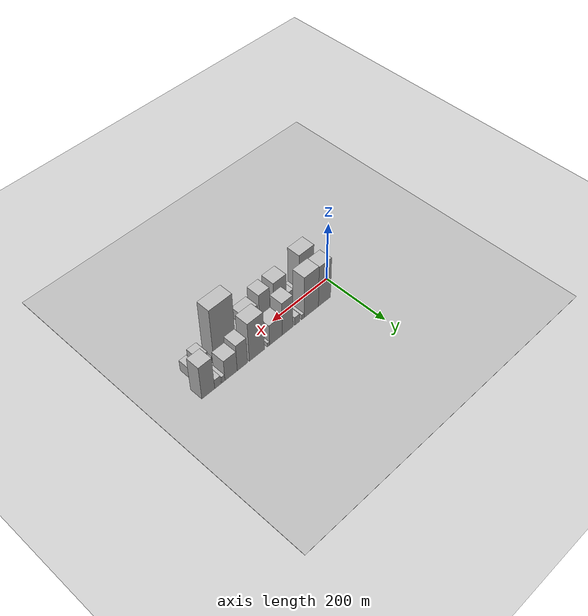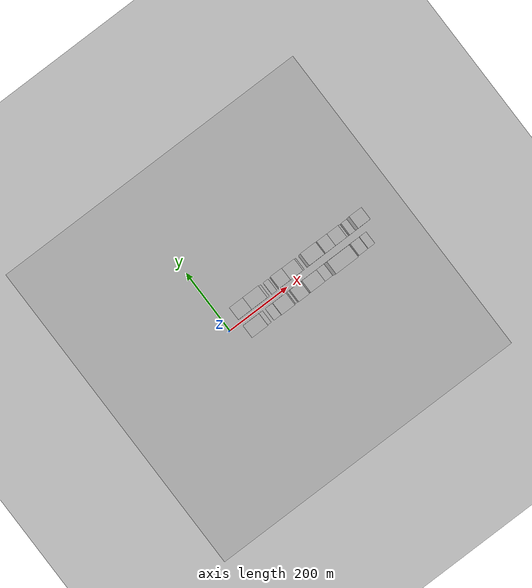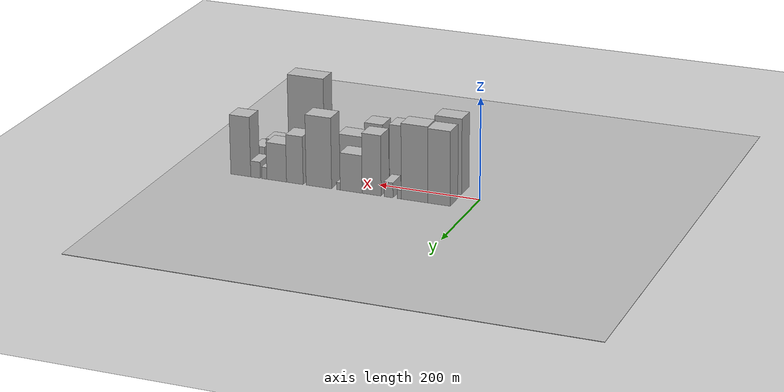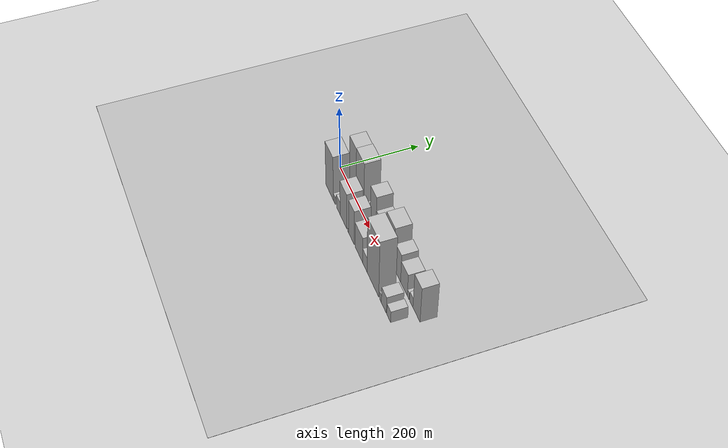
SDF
<?xml version="1.0" encoding="utf-8"?>

<sdf version="1.6">

   <world name="default">

      <gui fullscreen="0">

         <camera name="user_camera">

            <pose>-15 0 4.57585 0 0 0</pose>

            <view_controller>orbit</view_controller>

         </camera>

      </gui>

      <scene>

         <sky>

           <clouds>

             <speed>12</speed>

           </clouds>

         </sky>

         <ambient>0.4 0.4 0.4 1</ambient>

         <background>0.7 0.7 0.7 1</background>

         <shadows>1</shadows>

      </scene>

      <gravity>0 0 -9.8066</gravity>

      <magnetic_field>6e-06 2.3e-05 -4.2e-05</magnetic_field>

      <physics default="0" name="default_physics" type="ode">

         <ode>

            <solver>

               <type>quick</type>

               <iters>10</iters>

               <sor>1.0</sor>

               <use_dynamic_moi_rescaling>0</use_dynamic_moi_rescaling>

            </solver>

            <constraints>

               <cfm>0</cfm>

               <erp>0.2</erp>

               <contact_max_correcting_vel>100</contact_max_correcting_vel>

               <contact_surface_layer>0.001</contact_surface_layer>

            </constraints>

         </ode>

         <max_step_size>0.004</max_step_size>

         <real_time_factor>1</real_time_factor>

         <real_time_update_rate>250</real_time_update_rate>

      </physics>

      <light name="sun" type="directional">

         <cast_shadows>1</cast_shadows>

         <pose>0 0 10 0 0 0</pose>

         <diffuse>0.8 0.8 0.8 1</diffuse>

         <specular>0.2 0.2 0.2 1</specular>

         <attenuation>

            <range>1000</range>

            <constant>0.9</constant>

            <linear>0.01</linear>

            <quadratic>0.001</quadratic>

         </attenuation>

         <direction>-0.5 0.1 -0.9</direction>

      </light>

      <include>

         <name>ground_plane_1</name>

         <uri>model://HANNAS_ground_plane</uri>

         <pose>0 0 0  0 0 0</pose>

      </include>

      <include>

         <name>ground_plane_2</name>

         <uri>model://HANNAS_ground_plane</uri>

         <pose>100 0 0  0 0 0</pose>

      </include>

      <model name="building_1">

         <static>1</static>

         <pose frame="">62.2849 30.0000 0 0.000000 0.000000 1.570796</pose>

         <link name="link">

            <pose frame="">0 0 73.50 0 0 0</pose>

            <collision name="collision">

               <geometry>

                  <box>

                     <size>40.0000 44.5698 147.0000</size>

                  </box>

               </geometry>

               <max_contacts>10</max_contacts>

               <surface>

                  <contact>

                     <ode/>

                  </contact>

                  <bounce/>

                  <friction>

                     <torsional>

                        <ode/>

                     </torsional>

                     <ode/>

                  </friction>

               </surface>

            </collision>

            <visual name="visual">

               <cast_shadows>0</cast_shadows>

               <geometry>

                  <box>

                     <size>40.0000 44.5698 147.0000</size>

                  </box>

               </geometry>

               <material>

                  <script>

                     <uri>model://HANNAS_wall/materials/scripts</uri>

                     <uri>model://HANNAS_wall/materials/textures</uri>

                     <name>vrc/HANNAS_wall</name>

                  </script>

               </material>

            </visual>

            <self_collide>0</self_collide>

            <enable_wind>0</enable_wind>

            <kinematic>0</kinematic>

         </link>

      </model>

      <model name="building_2">

         <static>1</static>

         <pose frame="">110.5706 30.0000 0 0.000000 0.000000 1.570796</pose>

         <link name="link">

            <pose frame="">0 0 75.00 0 0 0</pose>

            <collision name="collision">

               <geometry>

                  <box>

                     <size>40.0000 52.0017 150.0000</size>

                  </box>

               </geometry>

               <max_contacts>10</max_contacts>

               <surface>

                  <contact>

                     <ode/>

                  </contact>

                  <bounce/>

                  <friction>

                     <torsional>

                        <ode/>

                     </torsional>

                     <ode/>

                  </friction>

               </surface>

            </collision>

            <visual name="visual">

               <cast_shadows>0</cast_shadows>

               <geometry>

                  <box>

                     <size>40.0000 52.0017 150.0000</size>

                  </box>

               </geometry>

               <material>

                  <script>

                     <uri>model://HANNAS_wall/materials/scripts</uri>

                     <uri>model://HANNAS_wall/materials/textures</uri>

                     <name>vrc/HANNAS_wall</name>

                  </script>

               </material>

            </visual>

            <self_collide>0</self_collide>

            <enable_wind>0</enable_wind>

            <kinematic>0</kinematic>

         </link>

      </model>

      <model name="building_3">

         <static>1</static>

         <pose frame="">140.7475 30.0000 0 0.000000 0.000000 1.570796</pose>

         <link name="link">

            <pose frame="">0 0 9.00 0 0 0</pose>

            <collision name="collision">

               <geometry>

                  <box>

                     <size>40.0000 8.3522 18.0000</size>

                  </box>

               </geometry>

               <max_contacts>10</max_contacts>

               <surface>

                  <contact>

                     <ode/>

                  </contact>

                  <bounce/>

                  <friction>

                     <torsional>

                        <ode/>

                     </torsional>

                     <ode/>

                  </friction>

               </surface>

            </collision>

            <visual name="visual">

               <cast_shadows>0</cast_shadows>

               <geometry>

                  <box>

                     <size>40.0000 8.3522 18.0000</size>

                  </box>

               </geometry>

               <material>

                  <script>

                     <uri>model://HANNAS_wall/materials/scripts</uri>

                     <uri>model://HANNAS_wall/materials/textures</uri>

                     <name>vrc/HANNAS_wall</name>

                  </script>

               </material>

            </visual>

            <self_collide>0</self_collide>

            <enable_wind>0</enable_wind>

            <kinematic>0</kinematic>

         </link>

      </model>

      <model name="building_4">

         <static>1</static>

         <pose frame="">161.8070 30.0000 0 0.000000 0.000000 1.570796</pose>

         <link name="link">

            <pose frame="">0 0 15.00 0 0 0</pose>

            <collision name="collision">

               <geometry>

                  <box>

                     <size>40.0000 17.7667 30.0000</size>

                  </box>

               </geometry>

               <max_contacts>10</max_contacts>

               <surface>

                  <contact>

                     <ode/>

                  </contact>

                  <bounce/>

                  <friction>

                     <torsional>

                        <ode/>

                     </torsional>

                     <ode/>

                  </friction>

               </surface>

            </collision>

            <visual name="visual">

               <cast_shadows>0</cast_shadows>

               <geometry>

                  <box>

                     <size>40.0000 17.7667 30.0000</size>

                  </box>

               </geometry>

               <material>

                  <script>

                     <uri>model://HANNAS_wall/materials/scripts</uri>

                     <uri>model://HANNAS_wall/materials/textures</uri>

                     <name>vrc/HANNAS_wall</name>

                  </script>

               </material>

            </visual>

            <self_collide>0</self_collide>

            <enable_wind>0</enable_wind>

            <kinematic>0</kinematic>

         </link>

      </model>

      <model name="building_5">

         <static>1</static>

         <pose frame="">195.6991 30.0000 0 0.000000 0.000000 1.570796</pose>

         <link name="link">

            <pose frame="">0 0 60.00 0 0 0</pose>

            <collision name="collision">

               <geometry>

                  <box>

                     <size>40.0000 38.0176 120.0000</size>

                  </box>

               </geometry>

               <max_contacts>10</max_contacts>

               <surface>

                  <contact>

                     <ode/>

                  </contact>

                  <bounce/>

                  <friction>

                     <torsional>

                        <ode/>

                     </torsional>

                     <ode/>

                  </friction>

               </surface>

            </collision>

            <visual name="visual">

               <cast_shadows>0</cast_shadows>

               <geometry>

                  <box>

                     <size>40.0000 38.0176 120.0000</size>

                  </box>

               </geometry>

               <material>

                  <script>

                     <uri>model://HANNAS_wall/materials/scripts</uri>

                     <uri>model://HANNAS_wall/materials/textures</uri>

                     <name>vrc/HANNAS_wall</name>

                  </script>

               </material>

            </visual>

            <self_collide>0</self_collide>

            <enable_wind>0</enable_wind>

            <kinematic>0</kinematic>

         </link>

      </model>

      <model name="building_6">

         <static>1</static>

         <pose frame="">236.7764 30.0000 0 0.000000 0.000000 1.570796</pose>

         <link name="link">

            <pose frame="">0 0 37.50 0 0 0</pose>

            <collision name="collision">

               <geometry>

                  <box>

                     <size>40.0000 44.1371 75.0000</size>

                  </box>

               </geometry>

               <max_contacts>10</max_contacts>

               <surface>

                  <contact>

                     <ode/>

                  </contact>

                  <bounce/>

                  <friction>

                     <torsional>

                        <ode/>

                     </torsional>

                     <ode/>

                  </friction>

               </surface>

            </collision>

            <visual name="visual">

               <cast_shadows>0</cast_shadows>

               <geometry>

                  <box>

                     <size>40.0000 44.1371 75.0000</size>

                  </box>

               </geometry>

               <material>

                  <script>

                     <uri>model://HANNAS_wall/materials/scripts</uri>

                     <uri>model://HANNAS_wall/materials/textures</uri>

                     <name>vrc/HANNAS_wall</name>

                  </script>

               </material>

            </visual>

            <self_collide>0</self_collide>

            <enable_wind>0</enable_wind>

            <kinematic>0</kinematic>

         </link>

      </model>

      <model name="building_7">

         <static>1</static>

         <pose frame="">262.4661 30.0000 0 0.000000 0.000000 1.570796</pose>

         <link name="link">

            <pose frame="">0 0 7.50 0 0 0</pose>

            <collision name="collision">

               <geometry>

                  <box>

                     <size>40.0000 7.2424 15.0000</size>

                  </box>

               </geometry>

               <max_contacts>10</max_contacts>

               <surface>

                  <contact>

                     <ode/>

                  </contact>

                  <bounce/>

                  <friction>

                     <torsional>

                        <ode/>

                     </torsional>

                     <ode/>

                  </friction>

               </surface>

            </collision>

            <visual name="visual">

               <cast_shadows>0</cast_shadows>

               <geometry>

                  <box>

                     <size>40.0000 7.2424 15.0000</size>

                  </box>

               </geometry>

               <material>

                  <script>

                     <uri>model://HANNAS_wall/materials/scripts</uri>

                     <uri>model://HANNAS_wall/materials/textures</uri>

                     <name>vrc/HANNAS_wall</name>

                  </script>

               </material>

            </visual>

            <self_collide>0</self_collide>

            <enable_wind>0</enable_wind>

            <kinematic>0</kinematic>

         </link>

      </model>

      <model name="building_8">

         <static>1</static>

         <pose frame="">301.9449 30.0000 0 0.000000 0.000000 1.570796</pose>

         <link name="link">

            <pose frame="">0 0 70.50 0 0 0</pose>

            <collision name="collision">

               <geometry>

                  <box>

                     <size>40.0000 51.7151 141.0000</size>

                  </box>

               </geometry>

               <max_contacts>10</max_contacts>

               <surface>

                  <contact>

                     <ode/>

                  </contact>

                  <bounce/>

                  <friction>

                     <torsional>

                        <ode/>

                     </torsional>

                     <ode/>

                  </friction>

               </surface>

            </collision>

            <visual name="visual">

               <cast_shadows>0</cast_shadows>

               <geometry>

                  <box>

                     <size>40.0000 51.7151 141.0000</size>

                  </box>

               </geometry>

               <material>

                  <script>

                     <uri>model://HANNAS_wall/materials/scripts</uri>

                     <uri>model://HANNAS_wall/materials/textures</uri>

                     <name>vrc/HANNAS_wall</name>

                  </script>

               </material>

            </visual>

            <self_collide>0</self_collide>

            <enable_wind>0</enable_wind>

            <kinematic>0</kinematic>

         </link>

      </model>

      <model name="building_9">

         <static>1</static>

         <pose frame="">350.8130 30.0000 0 0.000000 0.000000 1.570796</pose>

         <link name="link">

            <pose frame="">0 0 48.00 0 0 0</pose>

            <collision name="collision">

               <geometry>

                  <box>

                     <size>40.0000 34.0211 96.0000</size>

                  </box>

               </geometry>

               <max_contacts>10</max_contacts>

               <surface>

                  <contact>

                     <ode/>

                  </contact>

                  <bounce/>

                  <friction>

                     <torsional>

                        <ode/>

                     </torsional>

                     <ode/>

                  </friction>

               </surface>

            </collision>

            <visual name="visual">

               <cast_shadows>0</cast_shadows>

               <geometry>

                  <box>

                     <size>40.0000 34.0211 96.0000</size>

                  </box>

               </geometry>

               <material>

                  <script>

                     <uri>model://HANNAS_wall/materials/scripts</uri>

                     <uri>model://HANNAS_wall/materials/textures</uri>

                     <name>vrc/HANNAS_wall</name>

                  </script>

               </material>

            </visual>

            <self_collide>0</self_collide>

            <enable_wind>0</enable_wind>

            <kinematic>0</kinematic>

         </link>

      </model>

      <model name="building_10">

         <static>1</static>

         <pose frame="">388.0359 30.0000 0 0.000000 0.000000 1.570796</pose>

         <link name="link">

            <pose frame="">0 0 37.50 0 0 0</pose>

            <collision name="collision">

               <geometry>

                  <box>

                     <size>40.0000 40.4247 75.0000</size>

                  </box>

               </geometry>

               <max_contacts>10</max_contacts>

               <surface>

                  <contact>

                     <ode/>

                  </contact>

                  <bounce/>

                  <friction>

                     <torsional>

                        <ode/>

                     </torsional>

                     <ode/>

                  </friction>

               </surface>

            </collision>

            <visual name="visual">

               <cast_shadows>0</cast_shadows>

               <geometry>

                  <box>

                     <size>40.0000 40.4247 75.0000</size>

                  </box>

               </geometry>

               <material>

                  <script>

                     <uri>model://HANNAS_wall/materials/scripts</uri>

                     <uri>model://HANNAS_wall/materials/textures</uri>

                     <name>vrc/HANNAS_wall</name>

                  </script>

               </material>

            </visual>

            <self_collide>0</self_collide>

            <enable_wind>0</enable_wind>

            <kinematic>0</kinematic>

         </link>

      </model>

      <model name="building_11">

         <static>1</static>

         <pose frame="">413.4370 30.0000 0 0.000000 0.000000 1.570796</pose>

         <link name="link">

            <pose frame="">0 0 12.00 0 0 0</pose>

            <collision name="collision">

               <geometry>

                  <box>

                     <size>40.0000 10.3775 24.0000</size>

                  </box>

               </geometry>

               <max_contacts>10</max_contacts>

               <surface>

                  <contact>

                     <ode/>

                  </contact>

                  <bounce/>

                  <friction>

                     <torsional>

                        <ode/>

                     </torsional>

                     <ode/>

                  </friction>

               </surface>

            </collision>

            <visual name="visual">

               <cast_shadows>0</cast_shadows>

               <geometry>

                  <box>

                     <size>40.0000 10.3775 24.0000</size>

                  </box>

               </geometry>

               <material>

                  <script>

                     <uri>model://HANNAS_wall/materials/scripts</uri>

                     <uri>model://HANNAS_wall/materials/textures</uri>

                     <name>vrc/HANNAS_wall</name>

                  </script>

               </material>

            </visual>

            <self_collide>0</self_collide>

            <enable_wind>0</enable_wind>

            <kinematic>0</kinematic>

         </link>

      </model>

      <model name="building_12">

         <static>1</static>

         <pose frame="">431.5177 30.0000 0 0.000000 0.000000 1.570796</pose>

         <link name="link">

            <pose frame="">0 0 16.50 0 0 0</pose>

            <collision name="collision">

               <geometry>

                  <box>

                     <size>40.0000 19.7840 33.0000</size>

                  </box>

               </geometry>

               <max_contacts>10</max_contacts>

               <surface>

                  <contact>

                     <ode/>

                  </contact>

                  <bounce/>

                  <friction>

                     <torsional>

                        <ode/>

                     </torsional>

                     <ode/>

                  </friction>

               </surface>

            </collision>

            <visual name="visual">

               <cast_shadows>0</cast_shadows>

               <geometry>

                  <box>

                     <size>40.0000 19.7840 33.0000</size>

                  </box>

               </geometry>

               <material>

                  <script>

                     <uri>model://HANNAS_wall/materials/scripts</uri>

                     <uri>model://HANNAS_wall/materials/textures</uri>

                     <name>vrc/HANNAS_wall</name>

                  </script>

               </material>

            </visual>

            <self_collide>0</self_collide>

            <enable_wind>0</enable_wind>

            <kinematic>0</kinematic>

         </link>

      </model>

      <model name="building_13">

         <static>1</static>

         <pose frame="">462.0209 30.0000 0 0.000000 0.000000 1.570796</pose>

         <link name="link">

            <pose frame="">0 0 60.00 0 0 0</pose>

            <collision name="collision">

               <geometry>

                  <box>

                     <size>40.0000 41.2224 120.0000</size>

                  </box>

               </geometry>

               <max_contacts>10</max_contacts>

               <surface>

                  <contact>

                     <ode/>

                  </contact>

                  <bounce/>

                  <friction>

                     <torsional>

                        <ode/>

                     </torsional>

                     <ode/>

                  </friction>

               </surface>

            </collision>

            <visual name="visual">

               <cast_shadows>0</cast_shadows>

               <geometry>

                  <box>

                     <size>40.0000 41.2224 120.0000</size>

                  </box>

               </geometry>

               <material>

                  <script>

                     <uri>model://HANNAS_wall/materials/scripts</uri>

                     <uri>model://HANNAS_wall/materials/textures</uri>

                     <name>vrc/HANNAS_wall</name>

                  </script>

               </material>

            </visual>

            <self_collide>0</self_collide>

            <enable_wind>0</enable_wind>

            <kinematic>0</kinematic>

         </link>

      </model>

      <model name="building_14">

         <static>1</static>

         <pose frame="">66.6014 -30.0000 0 0.000000 0.000000 1.570796</pose>

         <link name="link">

            <pose frame="">0 0 75.00 0 0 0</pose>

            <collision name="collision">

               <geometry>

                  <box>

                     <size>40.0000 53.2028 150.0000</size>

                  </box>

               </geometry>

               <max_contacts>10</max_contacts>

               <surface>

                  <contact>

                     <ode/>

                  </contact>

                  <bounce/>

                  <friction>

                     <torsional>

                        <ode/>

                     </torsional>

                     <ode/>

                  </friction>

               </surface>

            </collision>

            <visual name="visual">

               <cast_shadows>0</cast_shadows>

               <geometry>

                  <box>

                     <size>40.0000 53.2028 150.0000</size>

                  </box>

               </geometry>

               <material>

                  <script>

                     <uri>model://HANNAS_wall/materials/scripts</uri>

                     <uri>model://HANNAS_wall/materials/textures</uri>

                     <name>vrc/HANNAS_wall</name>

                  </script>

               </material>

            </visual>

            <self_collide>0</self_collide>

            <enable_wind>0</enable_wind>

            <kinematic>0</kinematic>

         </link>

      </model>

      <model name="building_15">

         <static>1</static>

         <pose frame="">99.3333 -30.0000 0 0.000000 0.000000 1.570796</pose>

         <link name="link">

            <pose frame="">0 0 13.50 0 0 0</pose>

            <collision name="collision">

               <geometry>

                  <box>

                     <size>40.0000 12.2610 27.0000</size>

                  </box>

               </geometry>

               <max_contacts>10</max_contacts>

               <surface>

                  <contact>

                     <ode/>

                  </contact>

                  <bounce/>

                  <friction>

                     <torsional>

                        <ode/>

                     </torsional>

                     <ode/>

                  </friction>

               </surface>

            </collision>

            <visual name="visual">

               <cast_shadows>0</cast_shadows>

               <geometry>

                  <box>

                     <size>40.0000 12.2610 27.0000</size>

                  </box>

               </geometry>

               <material>

                  <script>

                     <uri>model://HANNAS_wall/materials/scripts</uri>

                     <uri>model://HANNAS_wall/materials/textures</uri>

                     <name>vrc/HANNAS_wall</name>

                  </script>

               </material>

            </visual>

            <self_collide>0</self_collide>

            <enable_wind>0</enable_wind>

            <kinematic>0</kinematic>

         </link>

      </model>

      <model name="building_16">

         <static>1</static>

         <pose frame="">126.8223 -30.0000 0 0.000000 0.000000 1.570796</pose>

         <link name="link">

            <pose frame="">0 0 22.50 0 0 0</pose>

            <collision name="collision">

               <geometry>

                  <box>

                     <size>40.0000 24.7169 45.0000</size>

                  </box>

               </geometry>

               <max_contacts>10</max_contacts>

               <surface>

                  <contact>

                     <ode/>

                  </contact>

                  <bounce/>

                  <friction>

                     <torsional>

                        <ode/>

                     </torsional>

                     <ode/>

                  </friction>

               </surface>

            </collision>

            <visual name="visual">

               <cast_shadows>0</cast_shadows>

               <geometry>

                  <box>

                     <size>40.0000 24.7169 45.0000</size>

                  </box>

               </geometry>

               <material>

                  <script>

                     <uri>model://HANNAS_wall/materials/scripts</uri>

                     <uri>model://HANNAS_wall/materials/textures</uri>

                     <name>vrc/HANNAS_wall</name>

                  </script>

               </material>

            </visual>

            <self_collide>0</self_collide>

            <enable_wind>0</enable_wind>

            <kinematic>0</kinematic>

         </link>

      </model>

      <model name="building_17">

         <static>1</static>

         <pose frame="">161.5404 -30.0000 0 0.000000 0.000000 1.570796</pose>

         <link name="link">

            <pose frame="">0 0 60.00 0 0 0</pose>

            <collision name="collision">

               <geometry>

                  <box>

                     <size>40.0000 44.7193 120.0000</size>

                  </box>

               </geometry>

               <max_contacts>10</max_contacts>

               <surface>

                  <contact>

                     <ode/>

                  </contact>

                  <bounce/>

                  <friction>

                     <torsional>

                        <ode/>

                     </torsional>

                     <ode/>

                  </friction>

               </surface>

            </collision>

            <visual name="visual">

               <cast_shadows>0</cast_shadows>

               <geometry>

                  <box>

                     <size>40.0000 44.7193 120.0000</size>

                  </box>

               </geometry>

               <material>

                  <script>

                     <uri>model://HANNAS_wall/materials/scripts</uri>

                     <uri>model://HANNAS_wall/materials/textures</uri>

                     <name>vrc/HANNAS_wall</name>

                  </script>

               </material>

            </visual>

            <self_collide>0</self_collide>

            <enable_wind>0</enable_wind>

            <kinematic>0</kinematic>

         </link>

      </model>

      <model name="building_18">

         <static>1</static>

         <pose frame="">193.3430 -30.0000 0 0.000000 0.000000 1.570796</pose>

         <link name="link">

            <pose frame="">0 0 7.50 0 0 0</pose>

            <collision name="collision">

               <geometry>

                  <box>

                     <size>40.0000 6.8859 15.0000</size>

                  </box>

               </geometry>

               <max_contacts>10</max_contacts>

               <surface>

                  <contact>

                     <ode/>

                  </contact>

                  <bounce/>

                  <friction>

                     <torsional>

                        <ode/>

                     </torsional>

                     <ode/>

                  </friction>

               </surface>

            </collision>

            <visual name="visual">

               <cast_shadows>0</cast_shadows>

               <geometry>

                  <box>

                     <size>40.0000 6.8859 15.0000</size>

                  </box>

               </geometry>

               <material>

                  <script>

                     <uri>model://HANNAS_wall/materials/scripts</uri>

                     <uri>model://HANNAS_wall/materials/textures</uri>

                     <name>vrc/HANNAS_wall</name>

                  </script>

               </material>

            </visual>

            <self_collide>0</self_collide>

            <enable_wind>0</enable_wind>

            <kinematic>0</kinematic>

         </link>

      </model>

      <model name="building_19">

         <static>1</static>

         <pose frame="">215.1888 -30.0000 0 0.000000 0.000000 1.570796</pose>

         <link name="link">

            <pose frame="">0 0 58.50 0 0 0</pose>

            <collision name="collision">

               <geometry>

                  <box>

                     <size>40.0000 36.8058 117.0000</size>

                  </box>

               </geometry>

               <max_contacts>10</max_contacts>

               <surface>

                  <contact>

                     <ode/>

                  </contact>

                  <bounce/>

                  <friction>

                     <torsional>

                        <ode/>

                     </torsional>

                     <ode/>

                  </friction>

               </surface>

            </collision>

            <visual name="visual">

               <cast_shadows>0</cast_shadows>

               <geometry>

                  <box>

                     <size>40.0000 36.8058 117.0000</size>

                  </box>

               </geometry>

               <material>

                  <script>

                     <uri>model://HANNAS_wall/materials/scripts</uri>

                     <uri>model://HANNAS_wall/materials/textures</uri>

                     <name>vrc/HANNAS_wall</name>

                  </script>

               </material>

            </visual>

            <self_collide>0</self_collide>

            <enable_wind>0</enable_wind>

            <kinematic>0</kinematic>

         </link>

      </model>

      <model name="building_20">

         <static>1</static>

         <pose frame="">263.2502 -30.0000 0 0.000000 0.000000 1.570796</pose>

         <link name="link">

            <pose frame="">0 0 43.50 0 0 0</pose>

            <collision name="collision">

               <geometry>

                  <box>

                     <size>40.0000 49.3170 87.0000</size>

                  </box>

               </geometry>

               <max_contacts>10</max_contacts>

               <surface>

                  <contact>

                     <ode/>

                  </contact>

                  <bounce/>

                  <friction>

                     <torsional>

                        <ode/>

                     </torsional>

                     <ode/>

                  </friction>

               </surface>

            </collision>

            <visual name="visual">

               <cast_shadows>0</cast_shadows>

               <geometry>

                  <box>

                     <size>40.0000 49.3170 87.0000</size>

                  </box>

               </geometry>

               <material>

                  <script>

                     <uri>model://HANNAS_wall/materials/scripts</uri>

                     <uri>model://HANNAS_wall/materials/textures</uri>

                     <name>vrc/HANNAS_wall</name>

                  </script>

               </material>

            </visual>

            <self_collide>0</self_collide>

            <enable_wind>0</enable_wind>

            <kinematic>0</kinematic>

         </link>

      </model>

      <model name="building_21">

         <static>1</static>

         <pose frame="">301.9464 -30.0000 0 0.000000 0.000000 1.570796</pose>

         <link name="link">

            <pose frame="">0 0 25.50 0 0 0</pose>

            <collision name="collision">

               <geometry>

                  <box>

                     <size>40.0000 28.0754 51.0000</size>

                  </box>

               </geometry>

               <max_contacts>10</max_contacts>

               <surface>

                  <contact>

                     <ode/>

                  </contact>

                  <bounce/>

                  <friction>

                     <torsional>

                        <ode/>

                     </torsional>

                     <ode/>

                  </friction>

               </surface>

            </collision>

            <visual name="visual">

               <cast_shadows>0</cast_shadows>

               <geometry>

                  <box>

                     <size>40.0000 28.0754 51.0000</size>

                  </box>

               </geometry>

               <material>

                  <script>

                     <uri>model://HANNAS_wall/materials/scripts</uri>

                     <uri>model://HANNAS_wall/materials/textures</uri>

                     <name>vrc/HANNAS_wall</name>

                  </script>

               </material>

            </visual>

            <self_collide>0</self_collide>

            <enable_wind>0</enable_wind>

            <kinematic>0</kinematic>

         </link>

      </model>

      <model name="building_22">

         <static>1</static>

         <pose frame="">352.5730 -30.0000 0 0.000000 0.000000 1.570796</pose>

         <link name="link">

            <pose frame="">0 0 96.00 0 0 0</pose>

            <collision name="collision">

               <geometry>

                  <box>

                     <size>40.0000 73.1778 192.0000</size>

                  </box>

               </geometry>

               <max_contacts>10</max_contacts>

               <surface>

                  <contact>

                     <ode/>

                  </contact>

                  <bounce/>

                  <friction>

                     <torsional>

                        <ode/>

                     </torsional>

                     <ode/>

                  </friction>

               </surface>

            </collision>

            <visual name="visual">

               <cast_shadows>0</cast_shadows>

               <geometry>

                  <box>

                     <size>40.0000 73.1778 192.0000</size>

                  </box>

               </geometry>

               <material>

                  <script>

                     <uri>model://HANNAS_wall/materials/scripts</uri>

                     <uri>model://HANNAS_wall/materials/textures</uri>

                     <name>vrc/HANNAS_wall</name>

                  </script>

               </material>

            </visual>

            <self_collide>0</self_collide>

            <enable_wind>0</enable_wind>

            <kinematic>0</kinematic>

         </link>

      </model>

      <model name="building_23">

         <static>1</static>

         <pose frame="">399.8176 -30.0000 0 0.000000 0.000000 1.570796</pose>

         <link name="link">

            <pose frame="">0 0 13.50 0 0 0</pose>

            <collision name="collision">

               <geometry>

                  <box>

                     <size>40.0000 11.3113 27.0000</size>

                  </box>

               </geometry>

               <max_contacts>10</max_contacts>

               <surface>

                  <contact>

                     <ode/>

                  </contact>

                  <bounce/>

                  <friction>

                     <torsional>

                        <ode/>

                     </torsional>

                     <ode/>

                  </friction>

               </surface>

            </collision>

            <visual name="visual">

               <cast_shadows>0</cast_shadows>

               <geometry>

                  <box>

                     <size>40.0000 11.3113 27.0000</size>

                  </box>

               </geometry>

               <material>

                  <script>

                     <uri>model://HANNAS_wall/materials/scripts</uri>

                     <uri>model://HANNAS_wall/materials/textures</uri>

                     <name>vrc/HANNAS_wall</name>

                  </script>

               </material>

            </visual>

            <self_collide>0</self_collide>

            <enable_wind>0</enable_wind>

            <kinematic>0</kinematic>

         </link>

      </model>

      <model name="building_24">

         <static>1</static>

         <pose frame="">420.6552 -30.0000 0 0.000000 0.000000 1.570796</pose>

         <link name="link">

            <pose frame="">0 0 28.50 0 0 0</pose>

            <collision name="collision">

               <geometry>

                  <box>

                     <size>40.0000 30.3638 57.0000</size>

                  </box>

               </geometry>

               <max_contacts>10</max_contacts>

               <surface>

                  <contact>

                     <ode/>

                  </contact>

                  <bounce/>

                  <friction>

                     <torsional>

                        <ode/>

                     </torsional>

                     <ode/>

                  </friction>

               </surface>

            </collision>

            <visual name="visual">

               <cast_shadows>0</cast_shadows>

               <geometry>

                  <box>

                     <size>40.0000 30.3638 57.0000</size>

                  </box>

               </geometry>

               <material>

                  <script>

                     <uri>model://HANNAS_wall/materials/scripts</uri>

                     <uri>model://HANNAS_wall/materials/textures</uri>

                     <name>vrc/HANNAS_wall</name>

                  </script>

               </material>

            </visual>

            <self_collide>0</self_collide>

            <enable_wind>0</enable_wind>

            <kinematic>0</kinematic>

         </link>

      </model>

      <model name="building_25">

         <static>1</static>

         <pose frame="">450.4312 -30.0000 0 0.000000 0.000000 1.570796</pose>

         <link name="link">

            <pose frame="">0 0 19.50 0 0 0</pose>

            <collision name="collision">

               <geometry>

                  <box>

                     <size>40.0000 23.1883 39.0000</size>

                  </box>

               </geometry>

               <max_contacts>10</max_contacts>

               <surface>

                  <contact>

                     <ode/>

                  </contact>

                  <bounce/>

                  <friction>

                     <torsional>

                        <ode/>

                     </torsional>

                     <ode/>

                  </friction>

               </surface>

            </collision>

            <visual name="visual">

               <cast_shadows>0</cast_shadows>

               <geometry>

                  <box>

                     <size>40.0000 23.1883 39.0000</size>

                  </box>

               </geometry>

               <material>

                  <script>

                     <uri>model://HANNAS_wall/materials/scripts</uri>

                     <uri>model://HANNAS_wall/materials/textures</uri>

                     <name>vrc/HANNAS_wall</name>

                  </script>

               </material>

            </visual>

            <self_collide>0</self_collide>

            <enable_wind>0</enable_wind>

            <kinematic>0</kinematic>

         </link>

      </model>

   </world>

</sdf>

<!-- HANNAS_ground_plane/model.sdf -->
<sdf version="1.4">
<model name="HANNAS_ground_plane">
  <static>true</static>
    <link name="link">
      <collision name="collision">
        <geometry>
          <plane>
            <normal>0 0 1</normal>
            <size>1000 1000</size>
          </plane>
        </geometry>
        <surface>
          <friction>
            <ode>
              <mu>100</mu>
              <mu2>50</mu2>
            </ode>
          </friction>
        </surface>
      </collision>
      <visual name="visual">
        <cast_shadows>false</cast_shadows>
        <geometry>
          <plane>
            <normal>0 0 1</normal>
            <size>1000 1000</size>
          </plane>
        </geometry>
        <material>
          <script>
            <uri>model://HANNAS_ground_plane/materials/scripts/HANNAS_ground_plane.material</uri>
	    <uri>model://HANNAS_ground_plane/materials/textures</uri>
            <name>HANNASGroundPlane/Image</name>
          </script>
        </material>
      </visual>
    </link>
  </model>
</sdf>
